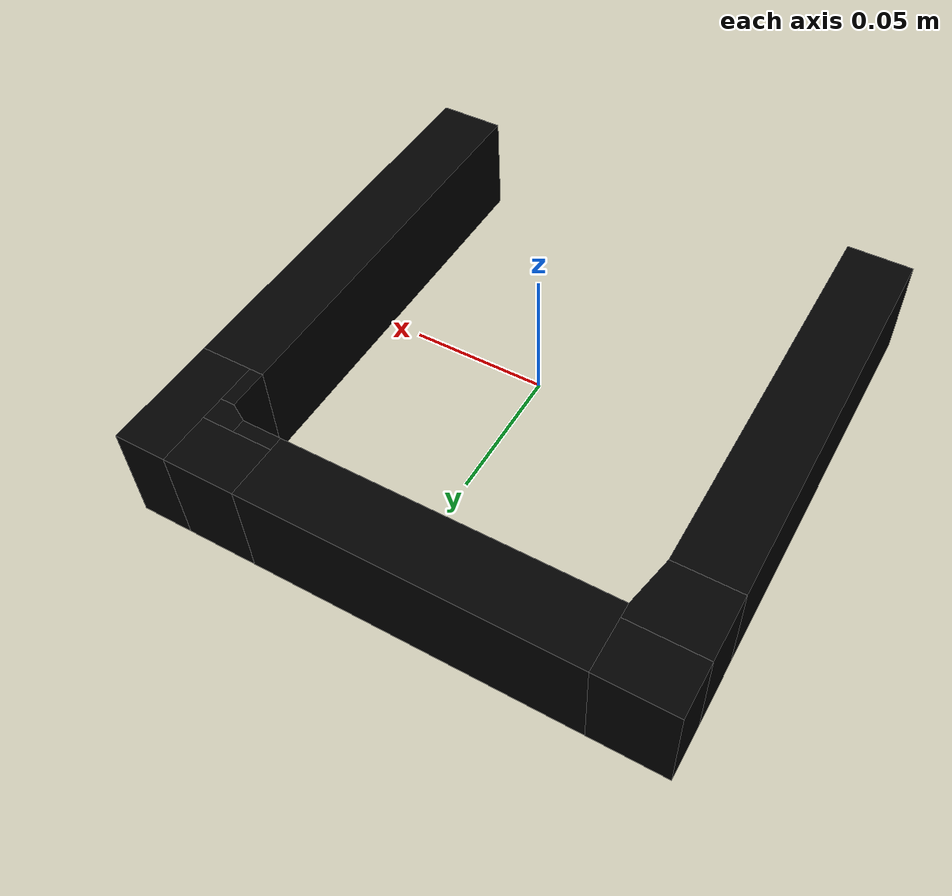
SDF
<?xml version='1.0' encoding='UTF-8'?>
<!-- This SDF was autogenerated by obj_to_drake_sdf.py -->
<sdf version="1.7">
  <model name="frame">
    <link name="body">
      <inertial>
        <pose>0 0 0 0 0 0</pose>
        <mass>1</mass>
        <inertia>
          <ixx>0.0040903753</ixx>
          <iyy>0.0062507576</iyy>
          <izz>0.010074466</izz>
          <ixy>-1.9600762e-19</ixy>
          <ixz>1.2833833e-20</ixz>
          <iyz>6.1252383e-21</iyz>
        </inertia>
      </inertial>
      <visual name="convex_0">
        <pose>0 0 0 0 0 0</pose>
        <geometry>
          <mesh>
            <uri>frame_convex_0.obj</uri>
          </mesh>
        </geometry>
        <material>
          <diffuse>0 0 0 1</diffuse>
        </material>
      </visual>
      <collision name="convex_0_volume">
        <pose>0 0 0 0 0 0</pose>
        <geometry>
          <mesh>
            <uri>frame_convex_0.obj</uri>
          </mesh>
        </geometry>
        <drake:proximity_properties xmlns:drake="uri:drake">
          <drake:compliant_hydroelastic/>
          <drake:hydroelastic_modulus> 3.0e7 </drake:hydroelastic_modulus>
          <drake:mesh_resolution_hint> 0.18 </drake:mesh_resolution_hint>
          <drake:hunt_crossley_dissipation>10</drake:hunt_crossley_dissipation>
          <drake:mu_dynamic>0.3</drake:mu_dynamic>
        </drake:proximity_properties>
      </collision>
      <visual name="convex_1">
        <pose>0 0 0 0 0 0</pose>
        <geometry>
          <mesh>
            <uri>frame_convex_1.obj</uri>
          </mesh>
        </geometry>
        <material>
          <diffuse>0 0 0 1</diffuse>
        </material>
      </visual>
      <collision name="convex_1_volume">
        <pose>0 0 0 0 0 0</pose>
        <geometry>
          <mesh>
            <uri>frame_convex_1.obj</uri>
          </mesh>
        </geometry>
        <drake:proximity_properties xmlns:drake="uri:drake">
          <drake:compliant_hydroelastic/>
          <drake:hydroelastic_modulus> 3.0e7 </drake:hydroelastic_modulus>
          <drake:mesh_resolution_hint> 0.18 </drake:mesh_resolution_hint>
          <drake:hunt_crossley_dissipation>10</drake:hunt_crossley_dissipation>
          <drake:mu_dynamic>0.3</drake:mu_dynamic>
        </drake:proximity_properties>
      </collision>
      <visual name="convex_2">
        <pose>0 0 0 0 0 0</pose>
        <geometry>
          <mesh>
            <uri>frame_convex_2.obj</uri>
          </mesh>
        </geometry>
        <material>
          <diffuse>0 0 0 1</diffuse>
        </material>
      </visual>
      <collision name="convex_2_volume">
        <pose>0 0 0 0 0 0</pose>
        <geometry>
          <mesh>
            <uri>frame_convex_2.obj</uri>
          </mesh>
        </geometry>
        <drake:proximity_properties xmlns:drake="uri:drake">
          <drake:compliant_hydroelastic/>
          <drake:hydroelastic_modulus> 3.0e7 </drake:hydroelastic_modulus>
          <drake:mesh_resolution_hint> 0.18 </drake:mesh_resolution_hint>
          <drake:hunt_crossley_dissipation>10</drake:hunt_crossley_dissipation>
          <drake:mu_dynamic>0.3</drake:mu_dynamic>
        </drake:proximity_properties>
      </collision>
      <visual name="convex_3">
        <pose>0 0 0 0 0 0</pose>
        <geometry>
          <mesh>
            <uri>frame_convex_3.obj</uri>
          </mesh>
        </geometry>
        <material>
          <diffuse>0 0 0 1</diffuse>
        </material>
      </visual>
      <collision name="convex_3_volume">
        <pose>0 0 0 0 0 0</pose>
        <geometry>
          <mesh>
            <uri>frame_convex_3.obj</uri>
          </mesh>
        </geometry>
        <drake:proximity_properties xmlns:drake="uri:drake">
          <drake:compliant_hydroelastic/>
          <drake:hydroelastic_modulus> 3.0e7 </drake:hydroelastic_modulus>
          <drake:mesh_resolution_hint> 0.18 </drake:mesh_resolution_hint>
          <drake:hunt_crossley_dissipation>10</drake:hunt_crossley_dissipation>
          <drake:mu_dynamic>0.3</drake:mu_dynamic>
        </drake:proximity_properties>
      </collision>
      <visual name="convex_4">
        <pose>0 0 0 0 0 0</pose>
        <geometry>
          <mesh>
            <uri>frame_convex_4.obj</uri>
          </mesh>
        </geometry>
        <material>
          <diffuse>0 0 0 1</diffuse>
        </material>
      </visual>
      <collision name="convex_4_volume">
        <pose>0 0 0 0 0 0</pose>
        <geometry>
          <mesh>
            <uri>frame_convex_4.obj</uri>
          </mesh>
        </geometry>
        <drake:proximity_properties xmlns:drake="uri:drake">
          <drake:compliant_hydroelastic/>
          <drake:hydroelastic_modulus> 3.0e7 </drake:hydroelastic_modulus>
          <drake:mesh_resolution_hint> 0.18 </drake:mesh_resolution_hint>
          <drake:hunt_crossley_dissipation>10</drake:hunt_crossley_dissipation>
          <drake:mu_dynamic>0.3</drake:mu_dynamic>
        </drake:proximity_properties>
      </collision>
      <visual name="convex_5">
        <pose>0 0 0 0 0 0</pose>
        <geometry>
          <mesh>
            <uri>frame_convex_5.obj</uri>
          </mesh>
        </geometry>
        <material>
          <diffuse>0 0 0 1</diffuse>
        </material>
      </visual>
      <collision name="convex_5_volume">
        <pose>0 0 0 0 0 0</pose>
        <geometry>
          <mesh>
            <uri>frame_convex_5.obj</uri>
          </mesh>
        </geometry>
        <drake:proximity_properties xmlns:drake="uri:drake">
          <drake:compliant_hydroelastic/>
          <drake:hydroelastic_modulus> 3.0e7 </drake:hydroelastic_modulus>
          <drake:mesh_resolution_hint> 0.18 </drake:mesh_resolution_hint>
          <drake:hunt_crossley_dissipation>10</drake:hunt_crossley_dissipation>
          <drake:mu_dynamic>0.3</drake:mu_dynamic>
        </drake:proximity_properties>
      </collision>
      <visual name="convex_6">
        <pose>0 0 0 0 0 0</pose>
        <geometry>
          <mesh>
            <uri>frame_convex_6.obj</uri>
          </mesh>
        </geometry>
        <material>
          <diffuse>0 0 0 1</diffuse>
        </material>
      </visual>
      <collision name="convex_6_volume">
        <pose>0 0 0 0 0 0</pose>
        <geometry>
          <mesh>
            <uri>frame_convex_6.obj</uri>
          </mesh>
        </geometry>
        <drake:proximity_properties xmlns:drake="uri:drake">
          <drake:compliant_hydroelastic/>
          <drake:hydroelastic_modulus> 3.0e7 </drake:hydroelastic_modulus>
          <drake:mesh_resolution_hint> 0.18 </drake:mesh_resolution_hint>
          <drake:hunt_crossley_dissipation>10</drake:hunt_crossley_dissipation>
          <drake:mu_dynamic>0.3</drake:mu_dynamic>
        </drake:proximity_properties>
      </collision>
      <visual name="convex_7">
        <pose>0 0 0 0 0 0</pose>
        <geometry>
          <mesh>
            <uri>frame_convex_7.obj</uri>
          </mesh>
        </geometry>
        <material>
          <diffuse>0 0 0 1</diffuse>
        </material>
      </visual>
      <collision name="convex_7_volume">
        <pose>0 0 0 0 0 0</pose>
        <geometry>
          <mesh>
            <uri>frame_convex_7.obj</uri>
          </mesh>
        </geometry>
        <drake:proximity_properties xmlns:drake="uri:drake">
          <drake:compliant_hydroelastic/>
          <drake:hydroelastic_modulus> 3.0e7 </drake:hydroelastic_modulus>
          <drake:mesh_resolution_hint> 0.18 </drake:mesh_resolution_hint>
          <drake:hunt_crossley_dissipation>10</drake:hunt_crossley_dissipation>
          <drake:mu_dynamic>0.3</drake:mu_dynamic>
        </drake:proximity_properties>
      </collision>
      <visual name="convex_8">
        <pose>0 0 0 0 0 0</pose>
        <geometry>
          <mesh>
            <uri>frame_convex_8.obj</uri>
          </mesh>
        </geometry>
        <material>
          <diffuse>0 0 0 1</diffuse>
        </material>
      </visual>
      <collision name="convex_8_volume">
        <pose>0 0 0 0 0 0</pose>
        <geometry>
          <mesh>
            <uri>frame_convex_8.obj</uri>
          </mesh>
        </geometry>
        <drake:proximity_properties xmlns:drake="uri:drake">
          <drake:compliant_hydroelastic/>
          <drake:hydroelastic_modulus> 3.0e7 </drake:hydroelastic_modulus>
          <drake:mesh_resolution_hint> 0.18 </drake:mesh_resolution_hint>
          <drake:hunt_crossley_dissipation>10</drake:hunt_crossley_dissipation>
          <drake:mu_dynamic>0.3</drake:mu_dynamic>
        </drake:proximity_properties>
      </collision>
      <visual name="convex_9">
        <pose>0 0 0 0 0 0</pose>
        <geometry>
          <mesh>
            <uri>frame_convex_9.obj</uri>
          </mesh>
        </geometry>
        <material>
          <diffuse>0 0 0 1</diffuse>
        </material>
      </visual>
      <collision name="convex_9_volume">
        <pose>0 0 0 0 0 0</pose>
        <geometry>
          <mesh>
            <uri>frame_convex_9.obj</uri>
          </mesh>
        </geometry>
        <drake:proximity_properties xmlns:drake="uri:drake">
          <drake:compliant_hydroelastic/>
          <drake:hydroelastic_modulus> 3.0e7 </drake:hydroelastic_modulus>
          <drake:mesh_resolution_hint> 0.18 </drake:mesh_resolution_hint>
          <drake:hunt_crossley_dissipation>10</drake:hunt_crossley_dissipation>
          <drake:mu_dynamic>0.3</drake:mu_dynamic>
        </drake:proximity_properties>
      </collision>
    </link>
  </model>
</sdf>
